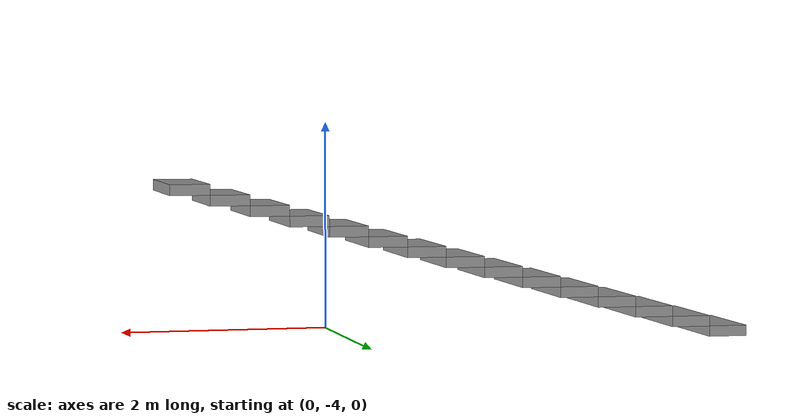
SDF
<?xml version='1.0'?>
<sdf version='1.7'>
  <model name='Untitled'>
    <pose>-0.975 -1.685 0 0 -0 0</pose>
    <link name='Stairs_0'>
      <visual name='Stairs_0_Visual_0'>
        <pose>-2.57133 -1.185 0.05 0 -0 1.5708</pose>
        <geometry>
          <box>
            <size>1 0.367333 0.1</size>
          </box>
        </geometry>
        <material>
          <script>
            <uri>file://media/materials/scripts/gazebo.material</uri>
            <name>Gazebo/Grey</name>
          </script>
          <ambient>1 1 1 1</ambient>
        </material>
        <meta>
          <layer>0</layer>
        </meta>
      </visual>
      <collision name='Stairs_0_Collision_0'>
        <geometry>
          <box>
            <size>1 0.367333 0.1</size>
          </box>
        </geometry>
        <pose>-2.57133 -1.185 0.05 0 -0 1.5708</pose>
      </collision>
      <visual name='Stairs_0_Visual_1'>
        <pose>-2.204 -1.185 0.15 0 -0 1.5708</pose>
        <geometry>
          <box>
            <size>1 0.367333 0.1</size>
          </box>
        </geometry>
        <material>
          <script>
            <uri>file://media/materials/scripts/gazebo.material</uri>
            <name>Gazebo/Grey</name>
          </script>
          <ambient>1 1 1 1</ambient>
        </material>
        <meta>
          <layer>0</layer>
        </meta>
      </visual>
      <collision name='Stairs_0_Collision_1'>
        <geometry>
          <box>
            <size>1 0.367333 0.1</size>
          </box>
        </geometry>
        <pose>-2.204 -1.185 0.15 0 -0 1.5708</pose>
      </collision>
      <visual name='Stairs_0_Visual_2'>
        <pose>-1.83667 -1.185 0.25 0 -0 1.5708</pose>
        <geometry>
          <box>
            <size>1 0.367333 0.1</size>
          </box>
        </geometry>
        <material>
          <script>
            <uri>file://media/materials/scripts/gazebo.material</uri>
            <name>Gazebo/Grey</name>
          </script>
          <ambient>1 1 1 1</ambient>
        </material>
        <meta>
          <layer>0</layer>
        </meta>
      </visual>
      <collision name='Stairs_0_Collision_2'>
        <geometry>
          <box>
            <size>1 0.367333 0.1</size>
          </box>
        </geometry>
        <pose>-1.83667 -1.185 0.25 0 -0 1.5708</pose>
      </collision>
      <visual name='Stairs_0_Visual_3'>
        <pose>-1.46933 -1.185 0.35 0 -0 1.5708</pose>
        <geometry>
          <box>
            <size>1 0.367333 0.1</size>
          </box>
        </geometry>
        <material>
          <script>
            <uri>file://media/materials/scripts/gazebo.material</uri>
            <name>Gazebo/Grey</name>
          </script>
          <ambient>1 1 1 1</ambient>
        </material>
        <meta>
          <layer>0</layer>
        </meta>
      </visual>
      <collision name='Stairs_0_Collision_3'>
        <geometry>
          <box>
            <size>1 0.367333 0.1</size>
          </box>
        </geometry>
        <pose>-1.46933 -1.185 0.35 0 -0 1.5708</pose>
      </collision>
      <visual name='Stairs_0_Visual_4'>
        <pose>-1.102 -1.185 0.45 0 -0 1.5708</pose>
        <geometry>
          <box>
            <size>1 0.367333 0.1</size>
          </box>
        </geometry>
        <material>
          <script>
            <uri>file://media/materials/scripts/gazebo.material</uri>
            <name>Gazebo/Grey</name>
          </script>
          <ambient>1 1 1 1</ambient>
        </material>
        <meta>
          <layer>0</layer>
        </meta>
      </visual>
      <collision name='Stairs_0_Collision_4'>
        <geometry>
          <box>
            <size>1 0.367333 0.1</size>
          </box>
        </geometry>
        <pose>-1.102 -1.185 0.45 0 -0 1.5708</pose>
      </collision>
      <visual name='Stairs_0_Visual_5'>
        <pose>-0.734667 -1.185 0.55 0 -0 1.5708</pose>
        <geometry>
          <box>
            <size>1 0.367333 0.1</size>
          </box>
        </geometry>
        <material>
          <script>
            <uri>file://media/materials/scripts/gazebo.material</uri>
            <name>Gazebo/Grey</name>
          </script>
          <ambient>1 1 1 1</ambient>
        </material>
        <meta>
          <layer>0</layer>
        </meta>
      </visual>
      <collision name='Stairs_0_Collision_5'>
        <geometry>
          <box>
            <size>1 0.367333 0.1</size>
          </box>
        </geometry>
        <pose>-0.734667 -1.185 0.55 0 -0 1.5708</pose>
      </collision>
      <visual name='Stairs_0_Visual_6'>
        <pose>-0.367333 -1.185 0.65 0 -0 1.5708</pose>
        <geometry>
          <box>
            <size>1 0.367333 0.1</size>
          </box>
        </geometry>
        <material>
          <script>
            <uri>file://media/materials/scripts/gazebo.material</uri>
            <name>Gazebo/Grey</name>
          </script>
          <ambient>1 1 1 1</ambient>
        </material>
        <meta>
          <layer>0</layer>
        </meta>
      </visual>
      <collision name='Stairs_0_Collision_6'>
        <geometry>
          <box>
            <size>1 0.367333 0.1</size>
          </box>
        </geometry>
        <pose>-0.367333 -1.185 0.65 0 -0 1.5708</pose>
      </collision>
      <visual name='Stairs_0_Visual_7'>
        <pose>0 -1.185 0.75 0 -0 1.5708</pose>
        <geometry>
          <box>
            <size>1 0.367333 0.1</size>
          </box>
        </geometry>
        <material>
          <script>
            <uri>file://media/materials/scripts/gazebo.material</uri>
            <name>Gazebo/Grey</name>
          </script>
          <ambient>1 1 1 1</ambient>
        </material>
        <meta>
          <layer>0</layer>
        </meta>
      </visual>
      <collision name='Stairs_0_Collision_7'>
        <geometry>
          <box>
            <size>1 0.367333 0.1</size>
          </box>
        </geometry>
        <pose>0 -1.185 0.75 0 -0 1.5708</pose>
      </collision>
      <visual name='Stairs_0_Visual_8'>
        <pose>0.367333 -1.185 0.85 0 -0 1.5708</pose>
        <geometry>
          <box>
            <size>1 0.367333 0.1</size>
          </box>
        </geometry>
        <material>
          <script>
            <uri>file://media/materials/scripts/gazebo.material</uri>
            <name>Gazebo/Grey</name>
          </script>
          <ambient>1 1 1 1</ambient>
        </material>
        <meta>
          <layer>0</layer>
        </meta>
      </visual>
      <collision name='Stairs_0_Collision_8'>
        <geometry>
          <box>
            <size>1 0.367333 0.1</size>
          </box>
        </geometry>
        <pose>0.367333 -1.185 0.85 0 -0 1.5708</pose>
      </collision>
      <visual name='Stairs_0_Visual_9'>
        <pose>0.734667 -1.185 0.95 0 -0 1.5708</pose>
        <geometry>
          <box>
            <size>1 0.367333 0.1</size>
          </box>
        </geometry>
        <material>
          <script>
            <uri>file://media/materials/scripts/gazebo.material</uri>
            <name>Gazebo/Grey</name>
          </script>
          <ambient>1 1 1 1</ambient>
        </material>
        <meta>
          <layer>0</layer>
        </meta>
      </visual>
      <collision name='Stairs_0_Collision_9'>
        <geometry>
          <box>
            <size>1 0.367333 0.1</size>
          </box>
        </geometry>
        <pose>0.734667 -1.185 0.95 0 -0 1.5708</pose>
      </collision>
      <visual name='Stairs_0_Visual_10'>
        <pose>1.102 -1.185 1.05 0 -0 1.5708</pose>
        <geometry>
          <box>
            <size>1 0.367333 0.1</size>
          </box>
        </geometry>
        <material>
          <script>
            <uri>file://media/materials/scripts/gazebo.material</uri>
            <name>Gazebo/Grey</name>
          </script>
          <ambient>1 1 1 1</ambient>
        </material>
        <meta>
          <layer>0</layer>
        </meta>
      </visual>
      <collision name='Stairs_0_Collision_10'>
        <geometry>
          <box>
            <size>1 0.367333 0.1</size>
          </box>
        </geometry>
        <pose>1.102 -1.185 1.05 0 -0 1.5708</pose>
      </collision>
      <visual name='Stairs_0_Visual_11'>
        <pose>1.46933 -1.185 1.15 0 -0 1.5708</pose>
        <geometry>
          <box>
            <size>1 0.367333 0.1</size>
          </box>
        </geometry>
        <material>
          <script>
            <uri>file://media/materials/scripts/gazebo.material</uri>
            <name>Gazebo/Grey</name>
          </script>
          <ambient>1 1 1 1</ambient>
        </material>
        <meta>
          <layer>0</layer>
        </meta>
      </visual>
      <collision name='Stairs_0_Collision_11'>
        <geometry>
          <box>
            <size>1 0.367333 0.1</size>
          </box>
        </geometry>
        <pose>1.46933 -1.185 1.15 0 -0 1.5708</pose>
      </collision>
      <visual name='Stairs_0_Visual_12'>
        <pose>1.83667 -1.185 1.25 0 -0 1.5708</pose>
        <geometry>
          <box>
            <size>1 0.367333 0.1</size>
          </box>
        </geometry>
        <material>
          <script>
            <uri>file://media/materials/scripts/gazebo.material</uri>
            <name>Gazebo/Grey</name>
          </script>
          <ambient>1 1 1 1</ambient>
        </material>
        <meta>
          <layer>0</layer>
        </meta>
      </visual>
      <collision name='Stairs_0_Collision_12'>
        <geometry>
          <box>
            <size>1 0.367333 0.1</size>
          </box>
        </geometry>
        <pose>1.83667 -1.185 1.25 0 -0 1.5708</pose>
      </collision>
      <visual name='Stairs_0_Visual_13'>
        <pose>2.204 -1.185 1.35 0 -0 1.5708</pose>
        <geometry>
          <box>
            <size>1 0.367333 0.1</size>
          </box>
        </geometry>
        <material>
          <script>
            <uri>file://media/materials/scripts/gazebo.material</uri>
            <name>Gazebo/Grey</name>
          </script>
          <ambient>1 1 1 1</ambient>
        </material>
        <meta>
          <layer>0</layer>
        </meta>
      </visual>
      <collision name='Stairs_0_Collision_13'>
        <geometry>
          <box>
            <size>1 0.367333 0.1</size>
          </box>
        </geometry>
        <pose>2.204 -1.185 1.35 0 -0 1.5708</pose>
      </collision>
      <visual name='Stairs_0_Visual_14'>
        <pose>2.57133 -1.185 1.45 0 -0 1.5708</pose>
        <geometry>
          <box>
            <size>1 0.367333 0.1</size>
          </box>
        </geometry>
        <material>
          <script>
            <uri>file://media/materials/scripts/gazebo.material</uri>
            <name>Gazebo/Grey</name>
          </script>
          <ambient>1 1 1 1</ambient>
        </material>
        <meta>
          <layer>0</layer>
        </meta>
      </visual>
      <collision name='Stairs_0_Collision_14'>
        <geometry>
          <box>
            <size>1 0.367333 0.1</size>
          </box>
        </geometry>
        <pose>2.57133 -1.185 1.45 0 -0 1.5708</pose>
      </collision>
    </link>
    <static>1</static>
  </model>
</sdf>
